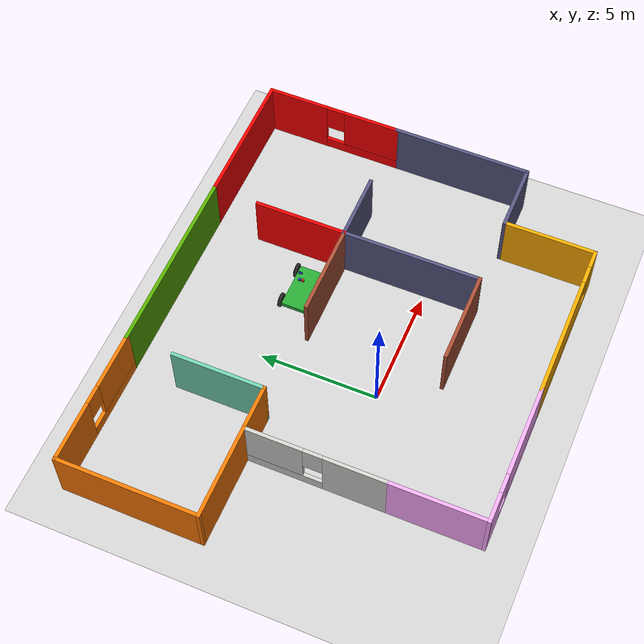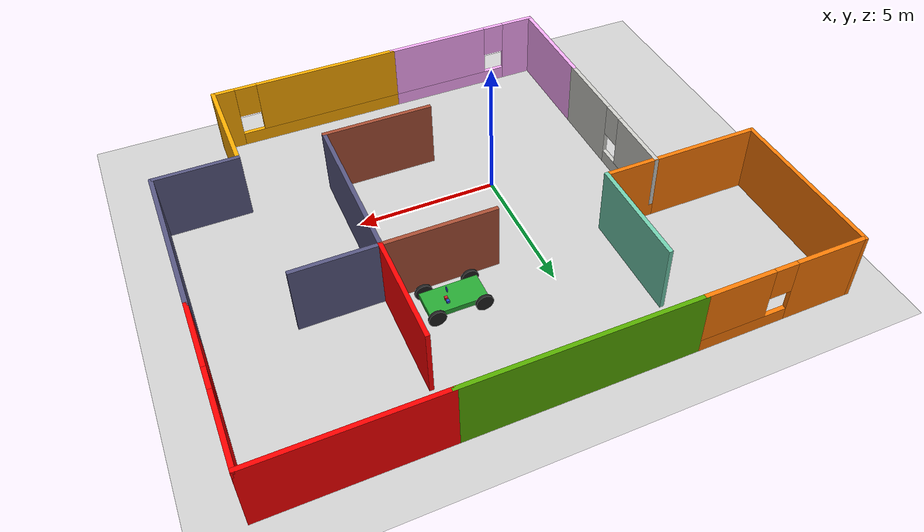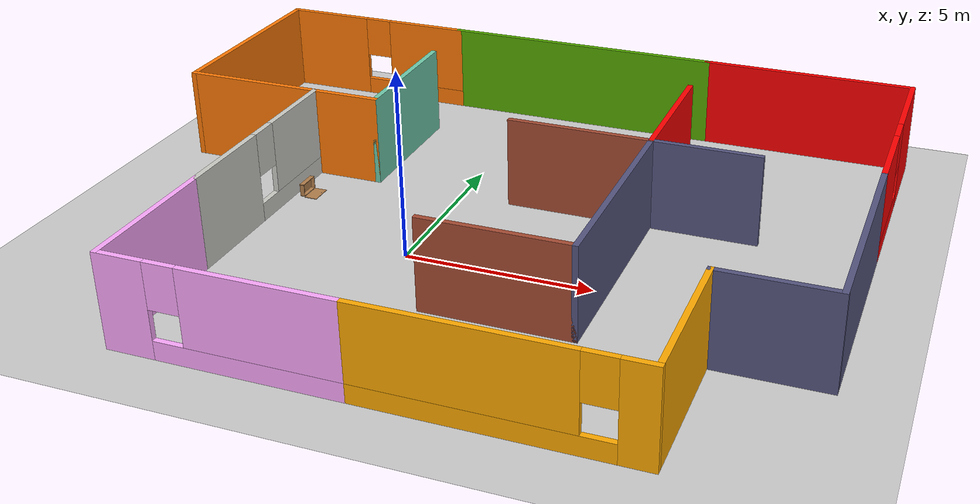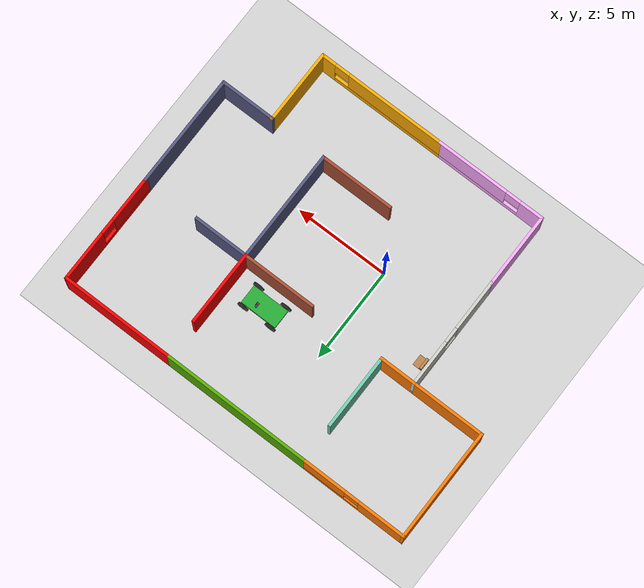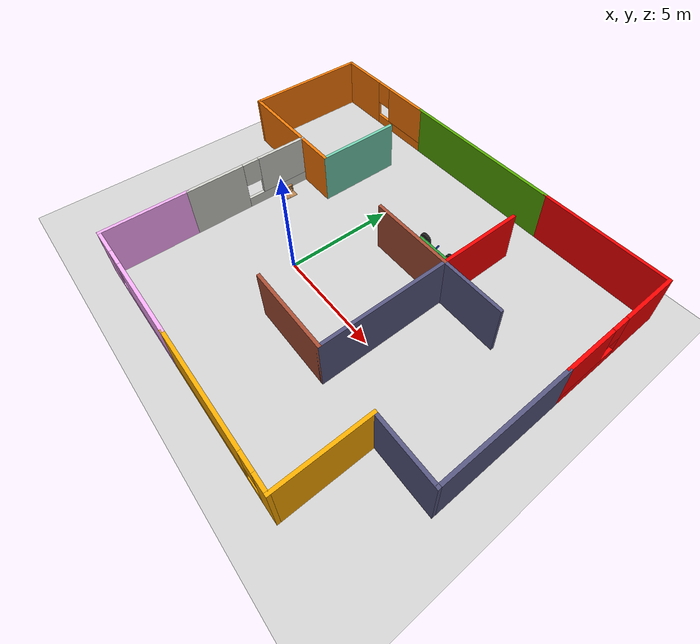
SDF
<sdf version="1.6">
 <world name="default">
  <model name="ground_plane">
   <static>1</static>
   <link name="link">
    <collision name="collision">
     <geometry><plane><normal>0 0 1</normal><size>100 100</size></plane></geometry>
     <surface>
      <contact><collide_bitmask>65535</collide_bitmask></contact>
      <friction><ode><mu>100</mu><mu2>50</mu2></ode></friction>
     </surface>
    </collision>
    <visual name="visual">
     <cast_shadows>0</cast_shadows>
     <geometry><plane><normal>0 0 1</normal><size>100 100</size></plane></geometry>
     <material>
      <script><uri>file://media/materials/scripts/gazebo.material</uri><name>Gazebo/Grey</name></script>
     </material>
    </visual>
   </link>
  </model>
  <model name="NewBuilding">
   <pose>1.46 1.695 0 0 -0 0</pose>
   <link name="Wall_0">
    <pose>-2.925 -7.775 0 0 -0 0</pose>
    <visual name="Wall_0_Visual_0">
     <pose>-2.35512 0 1.25 0 -0 0</pose>
     <geometry><box><size>1.28976 0.15 2.5</size></box></geometry>
     <material>
      <script><uri>file://media/materials/scripts/gazebo.material</uri><name>Gazebo/Grey</name></script>
      <ambient>1 0.666667 1 1</ambient>
     </material>
     <meta><layer>0</layer></meta>
    </visual>
    <collision name="Wall_0_Collision_0">
     <geometry><box><size>1.28976 0.15 2.5</size></box></geometry>
     <pose>-2.35512 0 1.25 0 -0 0</pose>
    </collision>
    <visual name="Wall_0_Visual_1">
     <pose>0.644881 0 0.25 0 -0 0</pose>
     <geometry><box><size>4.71024 0.15 0.5</size></box></geometry>
     <material>
      <script><uri>file://media/materials/scripts/gazebo.material</uri><name>Gazebo/Grey</name></script>
      <ambient>1 0.666667 1 1</ambient>
     </material>
     <meta><layer>0</layer></meta>
    </visual>
    <collision name="Wall_0_Collision_1">
     <geometry><box><size>4.71024 0.15 0.5</size></box></geometry>
     <pose>0.644881 0 0.25 0 -0 0</pose>
    </collision>
    <visual name="Wall_0_Visual_2">
     <pose>1.04488 0 1.5 0 -0 0</pose>
     <geometry><box><size>3.91024 0.15 2</size></box></geometry>
     <material>
      <script><uri>file://media/materials/scripts/gazebo.material</uri><name>Gazebo/Grey</name></script>
      <ambient>1 0.666667 1 1</ambient>
     </material>
     <meta><layer>0</layer></meta>
    </visual>
    <collision name="Wall_0_Collision_2">
     <geometry><box><size>3.91024 0.15 2</size></box></geometry>
     <pose>1.04488 0 1.5 0 -0 0</pose>
    </collision>
    <visual name="Wall_0_Visual_3">
     <pose>-1.31024 0 1.9 0 -0 0</pose>
     <geometry><box><size>0.8 0.15 1.2</size></box></geometry>
     <material>
      <script><uri>file://media/materials/scripts/gazebo.material</uri><name>Gazebo/Grey</name></script>
      <ambient>1 0.666667 1 1</ambient>
     </material>
     <meta><layer>0</layer></meta>
    </visual>
    <collision name="Wall_0_Collision_3">
     <geometry><box><size>0.8 0.15 1.2</size></box></geometry>
     <pose>-1.31024 0 1.9 0 -0 0</pose>
    </collision>
   </link>
   <link name="Wall_12">
    <collision name="Wall_12_Collision">
     <geometry><box><size>2 0.15 2.5</size></box></geometry>
     <pose>0 0 1.25 0 -0 0</pose>
    </collision>
    <visual name="Wall_12_Visual">
     <pose>0 0 1.25 0 -0 0</pose>
     <geometry><box><size>2 0.15 2.5</size></box></geometry>
     <material>
      <script><uri>file://media/materials/scripts/gazebo.material</uri><name>Gazebo/Grey</name></script>
      <ambient>0.996078 0.47451 0.0196078 1</ambient>
     </material>
     <meta><layer>0</layer></meta>
    </visual>
    <pose>-4.925 1.925 0 0 -0 0</pose>
   </link>
   <link name="Wall_13">
    <collision name="Wall_13_Collision">
     <geometry><box><size>4 0.15 2.5</size></box></geometry>
     <pose>0 0 1.25 0 -0 0</pose>
    </collision>
    <visual name="Wall_13_Visual">
     <pose>0 0 1.25 0 -0 0</pose>
     <geometry><box><size>4 0.15 2.5</size></box></geometry>
     <material>
      <script><uri>file://media/materials/scripts/gazebo.material</uri><name>Gazebo/Grey</name></script>
      <ambient>0.435294 0.796078 0.67451 1</ambient>
     </material>
     <meta><layer>0</layer></meta>
    </visual>
    <pose>-4 3.85 0 0 -0 1.5708</pose>
   </link>
   <link name="Wall_17">
    <collision name="Wall_17_Collision">
     <geometry><box><size>8 0.15 2.5</size></box></geometry>
     <pose>0 0 1.25 0 -0 0</pose>
    </collision>
    <visual name="Wall_17_Visual">
     <pose>0 0 1.25 0 -0 0</pose>
     <geometry><box><size>8 0.15 2.5</size></box></geometry>
     <material>
      <script><uri>file://media/materials/scripts/gazebo.material</uri><name>Gazebo/Grey</name></script>
      <ambient>0.333333 0.666667 0 1</ambient>
     </material>
     <meta><layer>0</layer></meta>
    </visual>
    <pose>-0.075 7.775 0 0 -0 3.14159</pose>
   </link>
   <link name="Wall_2">
    <collision name="Wall_2_Collision">
     <geometry><box><size>4 0.15 2.5</size></box></geometry>
     <pose>0 0 1.25 0 -0 0</pose>
    </collision>
    <visual name="Wall_2_Visual">
     <pose>0 0 1.25 0 -0 0</pose>
     <geometry><box><size>4 0.15 2.5</size></box></geometry>
     <material>
      <script><uri>file://media/materials/scripts/gazebo.material</uri><name>Gazebo/Bricks</name></script>
      <ambient>1 1 1 1</ambient>
     </material>
     <meta><layer>0</layer></meta>
    </visual>
    <pose>1.925 -3.925 0 0 -0 0</pose>
   </link>
   <link name="Wall_20">
    <collision name="Wall_20_Collision">
     <geometry><box><size>4 0.15 2.5</size></box></geometry>
     <pose>0 0 1.25 0 -0 0</pose>
    </collision>
    <visual name="Wall_20_Visual">
     <pose>0 0 1.25 0 -0 0</pose>
     <geometry><box><size>4 0.15 2.5</size></box></geometry>
     <material>
      <script><uri>file://media/materials/scripts/gazebo.material</uri><name>Gazebo/Grey</name></script>
      <ambient>0.996078 0.47451 0.0196078 1</ambient>
     </material>
     <meta><layer>0</layer></meta>
    </visual>
    <pose>-7.775 1.925 0 0 -0 3.14159</pose>
   </link>
   <link name="Wall_22">
    <collision name="Wall_22_Collision">
     <geometry><box><size>6 0.15 2.5</size></box></geometry>
     <pose>0 0 1.25 0 -0 0</pose>
    </collision>
    <visual name="Wall_22_Visual">
     <pose>0 0 1.25 0 -0 0</pose>
     <geometry><box><size>6 0.15 2.5</size></box></geometry>
     <material>
      <script><uri>file://media/materials/scripts/gazebo.material</uri><name>Gazebo/Grey</name></script>
      <ambient>0.996078 0.47451 0.0196078 1</ambient>
     </material>
     <meta><layer>0</layer></meta>
    </visual>
    <pose>-9.7 4.85 0 0 -0 1.5708</pose>
   </link>
   <link name="Wall_23">
    <pose>-6.85 7.775 0 0 -0 0</pose>
    <visual name="Wall_23_Visual_0">
     <pose>-1.63189 0 1.25 0 -0 0</pose>
     <geometry><box><size>2.58621 0.15 2.5</size></box></geometry>
     <material>
      <script><uri>file://media/materials/scripts/gazebo.material</uri><name>Gazebo/Grey</name></script>
      <ambient>0.996078 0.47451 0.0196078 1</ambient>
     </material>
     <meta><layer>0</layer></meta>
    </visual>
    <collision name="Wall_23_Collision_0">
     <geometry><box><size>2.58621 0.15 2.5</size></box></geometry>
     <pose>-1.63189 0 1.25 0 -0 0</pose>
    </collision>
    <visual name="Wall_23_Visual_1">
     <pose>1.29311 0 0.25 0 -0 0</pose>
     <geometry><box><size>3.26379 0.15 0.5</size></box></geometry>
     <material>
      <script><uri>file://media/materials/scripts/gazebo.material</uri><name>Gazebo/Grey</name></script>
      <ambient>0.996078 0.47451 0.0196078 1</ambient>
     </material>
     <meta><layer>0</layer></meta>
    </visual>
    <collision name="Wall_23_Collision_1">
     <geometry><box><size>3.26379 0.15 0.5</size></box></geometry>
     <pose>1.29311 0 0.25 0 -0 0</pose>
    </collision>
    <visual name="Wall_23_Visual_2">
     <pose>1.69311 0 1.5 0 -0 0</pose>
     <geometry><box><size>2.46379 0.15 2</size></box></geometry>
     <material>
      <script><uri>file://media/materials/scripts/gazebo.material</uri><name>Gazebo/Grey</name></script>
      <ambient>0.996078 0.47451 0.0196078 1</ambient>
     </material>
     <meta><layer>0</layer></meta>
    </visual>
    <collision name="Wall_23_Collision_2">
     <geometry><box><size>2.46379 0.15 2</size></box></geometry>
     <pose>1.69311 0 1.5 0 -0 0</pose>
    </collision>
    <visual name="Wall_23_Visual_3">
     <pose>0.061212 0 1.9 0 -0 0</pose>
     <geometry><box><size>0.8 0.15 1.2</size></box></geometry>
     <material>
      <script><uri>file://media/materials/scripts/gazebo.material</uri><name>Gazebo/Grey</name></script>
      <ambient>0.996078 0.47451 0.0196078 1</ambient>
     </material>
     <meta><layer>0</layer></meta>
    </visual>
    <collision name="Wall_23_Collision_3">
     <geometry><box><size>0.8 0.15 1.2</size></box></geometry>
     <pose>0.061212 0 1.9 0 -0 0</pose>
    </collision>
   </link>
   <link name="Wall_25">
    <collision name="Wall_25_Collision">
     <geometry><box><size>4 0.15 2.5</size></box></geometry>
     <pose>0 0 1.25 0 -0 0</pose>
    </collision>
    <visual name="Wall_25_Visual">
     <pose>0 0 1.25 0 -0 0</pose>
     <geometry><box><size>4 0.15 2.5</size></box></geometry>
     <material>
      <script><uri>file://media/materials/scripts/gazebo.material</uri><name>Gazebo/Grey</name></script>
      <ambient>1 0 0 1</ambient>
     </material>
     <meta><layer>0</layer></meta>
    </visual>
    <pose>3.85 3.85 0 0 -0 1.5708</pose>
   </link>
   <link name="Wall_28">
    <collision name="Wall_28_Collision">
     <geometry><box><size>6 0.15 2.5</size></box></geometry>
     <pose>0 0 1.25 0 -0 0</pose>
    </collision>
    <visual name="Wall_28_Visual">
     <pose>0 0 1.25 0 -0 0</pose>
     <geometry><box><size>6 0.15 2.5</size></box></geometry>
     <material>
      <script><uri>file://media/materials/scripts/gazebo.material</uri><name>Gazebo/Grey</name></script>
      <ambient>1 0 0 1</ambient>
     </material>
     <meta><layer>0</layer></meta>
    </visual>
    <pose>6.775 7.775 0 0 -0 0</pose>
   </link>
   <link name="Wall_3">
    <collision name="Wall_3_Collision">
     <geometry><box><size>6 0.15 2.5</size></box></geometry>
     <pose>0 0 1.25 0 -0 0</pose>
    </collision>
    <visual name="Wall_3_Visual">
     <pose>0 0 1.25 0 -0 0</pose>
     <geometry><box><size>6 0.15 2.5</size></box></geometry>
     <material>
      <script><uri>file://media/materials/scripts/gazebo.material</uri><name>Gazebo/Grey</name></script>
      <ambient>0.333333 0.333333 0.498039 1</ambient>
     </material>
     <meta><layer>0</layer></meta>
    </visual>
    <pose>3.85 -1 0 0 -0 1.5708</pose>
   </link>
   <link name="Wall_30">
    <pose>9.7 4.85 0 0 0 -1.5708</pose>
    <visual name="Wall_30_Visual_0">
     <pose>-1.64654 0 1.25 0 -0 0</pose>
     <geometry><box><size>2.70692 0.15 2.5</size></box></geometry>
     <material>
      <script><uri>file://media/materials/scripts/gazebo.material</uri><name>Gazebo/Grey</name></script>
      <ambient>1 0 0 1</ambient>
     </material>
     <meta><layer>0</layer></meta>
    </visual>
    <collision name="Wall_30_Collision_0">
     <geometry><box><size>2.70692 0.15 2.5</size></box></geometry>
     <pose>-1.64654 0 1.25 0 -0 0</pose>
    </collision>
    <visual name="Wall_30_Visual_1">
     <pose>1.35346 0 0.25 0 -0 0</pose>
     <geometry><box><size>3.29308 0.15 0.5</size></box></geometry>
     <material>
      <script><uri>file://media/materials/scripts/gazebo.material</uri><name>Gazebo/Grey</name></script>
      <ambient>1 0 0 1</ambient>
     </material>
     <meta><layer>0</layer></meta>
    </visual>
    <collision name="Wall_30_Collision_1">
     <geometry><box><size>3.29308 0.15 0.5</size></box></geometry>
     <pose>1.35346 0 0.25 0 -0 0</pose>
    </collision>
    <visual name="Wall_30_Visual_2">
     <pose>1.75346 0 1.5 0 -0 0</pose>
     <geometry><box><size>2.49308 0.15 2</size></box></geometry>
     <material>
      <script><uri>file://media/materials/scripts/gazebo.material</uri><name>Gazebo/Grey</name></script>
      <ambient>1 0 0 1</ambient>
     </material>
     <meta><layer>0</layer></meta>
    </visual>
    <collision name="Wall_30_Collision_2">
     <geometry><box><size>2.49308 0.15 2</size></box></geometry>
     <pose>1.75346 0 1.5 0 -0 0</pose>
    </collision>
    <visual name="Wall_30_Visual_3">
     <pose>0.10692 0 1.9 0 -0 0</pose>
     <geometry><box><size>0.8 0.15 1.2</size></box></geometry>
     <material>
      <script><uri>file://media/materials/scripts/gazebo.material</uri><name>Gazebo/Grey</name></script>
      <ambient>1 0 0 1</ambient>
     </material>
     <meta><layer>0</layer></meta>
    </visual>
    <collision name="Wall_30_Collision_3">
     <geometry><box><size>0.8 0.15 1.2</size></box></geometry>
     <pose>0.10692 0 1.9 0 -0 0</pose>
    </collision>
   </link>
   <link name="Wall_34">
    <collision name="Wall_34_Collision">
     <geometry><box><size>3 0.15 2.5</size></box></geometry>
     <pose>0 0 1.25 0 -0 0</pose>
    </collision>
    <visual name="Wall_34_Visual">
     <pose>0 0 1.25 0 -0 0</pose>
     <geometry><box><size>3 0.15 2.5</size></box></geometry>
     <material>
      <script><uri>file://media/materials/scripts/gazebo.material</uri><name>Gazebo/Grey</name></script>
      <ambient>0.333333 0.333333 0.498039 1</ambient>
     </material>
     <meta><layer>0</layer></meta>
    </visual>
    <pose>5.275 1.925 0 0 -0 0</pose>
   </link>
   <link name="Wall_36">
    <collision name="Wall_36_Collision">
     <geometry><box><size>6 0.15 2.5</size></box></geometry>
     <pose>0 0 1.25 0 -0 0</pose>
    </collision>
    <visual name="Wall_36_Visual">
     <pose>0 0 1.25 0 -0 0</pose>
     <geometry><box><size>6 0.15 2.5</size></box></geometry>
     <material>
      <script><uri>file://media/materials/scripts/gazebo.material</uri><name>Gazebo/Grey</name></script>
      <ambient>0.333333 0.333333 0.498039 1</ambient>
     </material>
     <meta><layer>0</layer></meta>
    </visual>
    <pose>9.7 -1 0 0 0 -1.5708</pose>
   </link>
   <link name="Wall_38">
    <collision name="Wall_38_Collision">
     <geometry><box><size>3 0.15 2.5</size></box></geometry>
     <pose>0 0 1.25 0 -0 0</pose>
    </collision>
    <visual name="Wall_38_Visual">
     <pose>0 0 1.25 0 -0 0</pose>
     <geometry><box><size>3 0.15 2.5</size></box></geometry>
     <material>
      <script><uri>file://media/materials/scripts/gazebo.material</uri><name>Gazebo/Grey</name></script>
      <ambient>0.333333 0.333333 0.498039 1</ambient>
     </material>
     <meta><layer>0</layer></meta>
    </visual>
    <pose>8.275 -3.925 0 0 -0 3.14159</pose>
   </link>
   <link name="Wall_40">
    <collision name="Wall_40_Collision">
     <geometry><box><size>4 0.15 2.5</size></box></geometry>
     <pose>0 0 1.25 0 -0 0</pose>
    </collision>
    <visual name="Wall_40_Visual">
     <pose>0 0 1.25 0 -0 0</pose>
     <geometry><box><size>4 0.15 2.5</size></box></geometry>
     <material>
      <script><uri>file://media/materials/scripts/gazebo.material</uri><name>Gazebo/Grey</name></script>
      <ambient>1 0.666667 0 1</ambient>
     </material>
     <meta><layer>0</layer></meta>
    </visual>
    <pose>6.85 -5.85 0 0 0 -1.5708</pose>
   </link>
   <link name="Wall_41">
    <pose>3.425 -7.775 0 0 -0 3.14159</pose>
    <visual name="Wall_41_Visual_0">
     <pose>-3.07831 0 1.25 0 -0 0</pose>
     <geometry><box><size>0.843374 0.15 2.5</size></box></geometry>
     <material>
      <script><uri>file://media/materials/scripts/gazebo.material</uri><name>Gazebo/Grey</name></script>
      <ambient>1 0.666667 0 1</ambient>
     </material>
     <meta><layer>0</layer></meta>
    </visual>
    <collision name="Wall_41_Collision_0">
     <geometry><box><size>0.843374 0.15 2.5</size></box></geometry>
     <pose>-3.07831 0 1.25 0 -0 0</pose>
    </collision>
    <visual name="Wall_41_Visual_1">
     <pose>0.421687 0 0.25 0 -0 0</pose>
     <geometry><box><size>6.15663 0.15 0.5</size></box></geometry>
     <material>
      <script><uri>file://media/materials/scripts/gazebo.material</uri><name>Gazebo/Grey</name></script>
      <ambient>1 0.666667 0 1</ambient>
     </material>
     <meta><layer>0</layer></meta>
    </visual>
    <collision name="Wall_41_Collision_1">
     <geometry><box><size>6.15663 0.15 0.5</size></box></geometry>
     <pose>0.421687 0 0.25 0 -0 0</pose>
    </collision>
    <visual name="Wall_41_Visual_2">
     <pose>0.821687 0 1.5 0 -0 0</pose>
     <geometry><box><size>5.35663 0.15 2</size></box></geometry>
     <material>
      <script><uri>file://media/materials/scripts/gazebo.material</uri><name>Gazebo/Grey</name></script>
      <ambient>1 0.666667 0 1</ambient>
     </material>
     <meta><layer>0</layer></meta>
    </visual>
    <collision name="Wall_41_Collision_2">
     <geometry><box><size>5.35663 0.15 2</size></box></geometry>
     <pose>0.821687 0 1.5 0 -0 0</pose>
    </collision>
    <visual name="Wall_41_Visual_3">
     <pose>-2.25663 0 1.9 0 -0 0</pose>
     <geometry><box><size>0.8 0.15 1.2</size></box></geometry>
     <material>
      <script><uri>file://media/materials/scripts/gazebo.material</uri><name>Gazebo/Grey</name></script>
      <ambient>1 0.666667 0 1</ambient>
     </material>
     <meta><layer>0</layer></meta>
    </visual>
    <collision name="Wall_41_Collision_3">
     <geometry><box><size>0.8 0.15 1.2</size></box></geometry>
     <pose>-2.25663 0 1.9 0 -0 0</pose>
    </collision>
   </link>
   <link name="Wall_6">
    <collision name="Wall_6_Collision">
     <geometry><box><size>4 0.15 2.5</size></box></geometry>
     <pose>0 0 1.25 0 -0 0</pose>
    </collision>
    <visual name="Wall_6_Visual">
     <pose>0 0 1.25 0 -0 0</pose>
     <geometry><box><size>4 0.15 2.5</size></box></geometry>
     <material>
      <script><uri>file://media/materials/scripts/gazebo.material</uri><name>Gazebo/Bricks</name></script>
      <ambient>1 1 1 1</ambient>
     </material>
     <meta><layer>0</layer></meta>
    </visual>
    <pose>1.925 1.925 0 0 -0 3.14159</pose>
   </link>
   <link name="Wall_8">
    <collision name="Wall_8_Collision">
     <geometry><box><size>4 0.15 2.5</size></box></geometry>
     <pose>0 0 1.25 0 -0 0</pose>
    </collision>
    <visual name="Wall_8_Visual">
     <pose>0 0 1.25 0 -0 0</pose>
     <geometry><box><size>4 0.15 2.5</size></box></geometry>
     <material>
      <script><uri>file://media/materials/scripts/gazebo.material</uri><name>Gazebo/Grey</name></script>
      <ambient>1 0.666667 1 1</ambient>
     </material>
     <meta><layer>0</layer></meta>
    </visual>
    <pose>-5.85 -5.85 0 0 -0 1.5708</pose>
   </link>
   <link name="Wall_9">
    <pose>-5.85 -1 0 0 -0 1.5708</pose>
    <visual name="Wall_9_Visual_0">
     <pose>-1.63562 0 1.25 0 -0 0</pose>
     <geometry><box><size>2.72877 0.15 2.5</size></box></geometry>
     <material>
      <script><uri>file://media/materials/scripts/gazebo.material</uri><name>Gazebo/CeilingTiled</name></script>
      <ambient>1 1 1 1</ambient>
     </material>
     <meta><layer>0</layer></meta>
    </visual>
    <collision name="Wall_9_Collision_0">
     <geometry><box><size>2.72877 0.15 2.5</size></box></geometry>
     <pose>-1.63562 0 1.25 0 -0 0</pose>
    </collision>
    <visual name="Wall_9_Visual_1">
     <pose>1.36438 0 0.25 0 -0 0</pose>
     <geometry><box><size>3.27123 0.15 0.5</size></box></geometry>
     <material>
      <script><uri>file://media/materials/scripts/gazebo.material</uri><name>Gazebo/CeilingTiled</name></script>
      <ambient>1 1 1 1</ambient>
     </material>
     <meta><layer>0</layer></meta>
    </visual>
    <collision name="Wall_9_Collision_1">
     <geometry><box><size>3.27123 0.15 0.5</size></box></geometry>
     <pose>1.36438 0 0.25 0 -0 0</pose>
    </collision>
    <visual name="Wall_9_Visual_2">
     <pose>1.76439 0 1.5 0 -0 0</pose>
     <geometry><box><size>2.47123 0.15 2</size></box></geometry>
     <material>
      <script><uri>file://media/materials/scripts/gazebo.material</uri><name>Gazebo/CeilingTiled</name></script>
      <ambient>1 1 1 1</ambient>
     </material>
     <meta><layer>0</layer></meta>
    </visual>
    <collision name="Wall_9_Collision_2">
     <geometry><box><size>2.47123 0.15 2</size></box></geometry>
     <pose>1.76439 0 1.5 0 -0 0</pose>
    </collision>
    <visual name="Wall_9_Visual_3">
     <pose>0.12877 0 1.9 0 -0 0</pose>
     <geometry><box><size>0.8 0.15 1.2</size></box></geometry>
     <material>
      <script><uri>file://media/materials/scripts/gazebo.material</uri><name>Gazebo/CeilingTiled</name></script>
      <ambient>1 1 1 1</ambient>
     </material>
     <meta><layer>0</layer></meta>
    </visual>
    <collision name="Wall_9_Collision_3">
     <geometry><box><size>0.8 0.15 1.2</size></box></geometry>
     <pose>0.12877 0 1.9 0 -0 0</pose>
    </collision>
   </link>
   <static>1</static>
  </model>
  <model name="wooden_case_metal_peg">
   <link name="wooden_case::base">
    <pose>0 0 0.024 0 -0 0</pose>
    <inertial>
     <pose>-0.022184 0 0.171592 0 -0 0</pose>
     <mass>3.96264</mass>
     <inertia>
      <ixx>0.213536</ixx>
      <ixy>0</ixy>
      <ixz>0.000779377</ixz>
      <iyy>0.0708943</iyy>
      <iyz>0</iyz>
      <izz>0.154604</izz>
     </inertia>
    </inertial>
    <collision name="collision_back">
     <pose>-0.053975 0 0.1778 0 -0 0</pose>
     <geometry><box><size>0.01905 0.5461 0.3175</size></box></geometry>
     <surface>
      <contact>
       <poissons_ratio>0.347</poissons_ratio>
       <elastic_modulus>8.8e+09</elastic_modulus>
       <ode><kp>100000</kp><kd>100</kd><max_vel>100</max_vel><min_depth>0.001</min_depth></ode>
      </contact>
      <friction>
       <torsional>
        <coefficient>1</coefficient>
        <use_patch_radius>0</use_patch_radius>
        <surface_radius>0.01</surface_radius>
       </torsional>
      </friction>
     </surface>
    </collision>
    <visual name="visual_back">
     <pose>-0.053975 0 0.1778 0 -0 0</pose>
     <geometry><box><size>0.01905 0.5461 0.3175</size></box></geometry>
     <material>
      <script><uri>file://media/materials/scripts/gazebo.material</uri><name>Gazebo/Wood</name></script>
     </material>
    </visual>
    <collision name="collision_bottom">
     <pose>0 0 0.009525 0 -0 0</pose>
     <geometry><box><size>0.127 0.5842 0.01905</size></box></geometry>
     <surface>
      <contact>
       <poissons_ratio>0.347</poissons_ratio>
       <elastic_modulus>8.8e+09</elastic_modulus>
       <ode><kp>100000</kp><kd>100</kd><max_vel>100</max_vel><min_depth>0.001</min_depth></ode>
      </contact>
      <friction>
       <torsional>
        <coefficient>1</coefficient>
        <use_patch_radius>0</use_patch_radius>
        <surface_radius>0.01</surface_radius>
       </torsional>
      </friction>
     </surface>
    </collision>
    <visual name="visual_bottom">
     <pose>0 0 0.009525 0 -0 0</pose>
     <geometry><box><size>0.127 0.5842 0.01905</size></box></geometry>
     <material>
      <script><uri>file://media/materials/scripts/gazebo.material</uri><name>Gazebo/Wood</name></script>
     </material>
    </visual>
    <collision name="collision_top">
     <pose>0 0 0.346075 0 -0 0</pose>
     <geometry><box><size>0.127 0.5842 0.01905</size></box></geometry>
     <surface>
      <contact>
       <poissons_ratio>0.347</poissons_ratio>
       <elastic_modulus>8.8e+09</elastic_modulus>
       <ode><kp>100000</kp><kd>100</kd><max_vel>100</max_vel><min_depth>0.001</min_depth></ode>
      </contact>
      <friction>
       <torsional>
        <coefficient>1</coefficient>
        <use_patch_radius>0</use_patch_radius>
        <surface_radius>0.01</surface_radius>
       </torsional>
      </friction>
     </surface>
    </collision>
    <visual name="visual_top">
     <pose>0 0 0.346075 0 -0 0</pose>
     <geometry><box><size>0.127 0.5842 0.01905</size></box></geometry>
     <material>
      <script><uri>file://media/materials/scripts/gazebo.material</uri><name>Gazebo/Wood</name></script>
     </material>
    </visual>
    <collision name="collision_left">
     <pose>0 -0.282575 0.1778 0 -0 0</pose>
     <geometry><box><size>0.127 0.01905 0.3175</size></box></geometry>
     <surface>
      <contact>
       <poissons_ratio>0.347</poissons_ratio>
       <elastic_modulus>8.8e+09</elastic_modulus>
       <ode><kp>100000</kp><kd>100</kd><max_vel>100</max_vel><min_depth>0.001</min_depth></ode>
      </contact>
      <friction>
       <torsional>
        <coefficient>1</coefficient>
        <use_patch_radius>0</use_patch_radius>
        <surface_radius>0.01</surface_radius>
       </torsional>
      </friction>
     </surface>
    </collision>
    <visual name="visual_left">
     <pose>0 -0.282575 0.1778 0 -0 0</pose>
     <geometry><box><size>0.127 0.01905 0.3175</size></box></geometry>
     <material>
      <script><uri>file://media/materials/scripts/gazebo.material</uri><name>Gazebo/Wood</name></script>
     </material>
    </visual>
    <collision name="collision_right">
     <pose>0 0.282575 0.1778 0 -0 0</pose>
     <geometry><box><size>0.127 0.01905 0.3175</size></box></geometry>
     <surface>
      <contact>
       <poissons_ratio>0.347</poissons_ratio>
       <elastic_modulus>8.8e+09</elastic_modulus>
       <ode><kp>100000</kp><kd>100</kd><max_vel>100</max_vel><min_depth>0.001</min_depth></ode>
      </contact>
      <friction>
       <torsional>
        <coefficient>1</coefficient>
        <use_patch_radius>0</use_patch_radius>
        <surface_radius>0.01</surface_radius>
       </torsional>
      </friction>
     </surface>
    </collision>
    <visual name="visual_right">
     <pose>0 0.282575 0.1778 0 -0 0</pose>
     <geometry><box><size>0.127 0.01905 0.3175</size></box></geometry>
     <material>
      <script><uri>file://media/materials/scripts/gazebo.material</uri><name>Gazebo/Wood</name></script>
     </material>
    </visual>
    <collision name="collision_block_left">
     <pose>0.0095 -0.2151 -0.012 0 -0 0</pose>
     <geometry><box><size>0.108 0.05 0.024</size></box></geometry>
     <surface>
      <contact>
       <poissons_ratio>0.347</poissons_ratio>
       <elastic_modulus>8.8e+09</elastic_modulus>
       <ode><kp>100000</kp><kd>100</kd><max_vel>100</max_vel><min_depth>0.001</min_depth></ode>
      </contact>
      <friction>
       <torsional>
        <coefficient>1</coefficient>
        <use_patch_radius>0</use_patch_radius>
        <surface_radius>0.01</surface_radius>
       </torsional>
      </friction>
     </surface>
    </collision>
    <visual name="visual_block_left">
     <pose>0.0095 -0.2151 -0.012 0 -0 0</pose>
     <geometry><box><size>0.108 0.05 0.024</size></box></geometry>
     <material>
      <script><uri>file://media/materials/scripts/gazebo.material</uri><name>Gazebo/Wood</name></script>
     </material>
    </visual>
    <collision name="collision_block_right">
     <pose>0.0095 0.2151 -0.012 0 -0 0</pose>
     <geometry><box><size>0.108 0.05 0.024</size></box></geometry>
     <surface>
      <contact>
       <poissons_ratio>0.347</poissons_ratio>
       <elastic_modulus>8.8e+09</elastic_modulus>
       <ode><kp>100000</kp><kd>100</kd><max_vel>100</max_vel><min_depth>0.001</min_depth></ode>
      </contact>
      <friction>
       <torsional>
        <coefficient>1</coefficient>
        <use_patch_radius>0</use_patch_radius>
        <surface_radius>0.01</surface_radius>
       </torsional>
      </friction>
     </surface>
    </collision>
    <visual name="visual_block_right">
     <pose>0.0095 0.2151 -0.012 0 -0 0</pose>
     <geometry><box><size>0.108 0.05 0.024</size></box></geometry>
     <material>
      <script><uri>file://media/materials/scripts/gazebo.material</uri><name>Gazebo/Wood</name></script>
     </material>
    </visual>
   </link>
   <link name="wooden_case::lid">
    <pose>0.243775 0 0.009525 0 -0 0</pose>
    <inertial>
     <mass>1.97874</mass>
     <inertia>
      <ixx>0.0563367</ixx>
      <ixy>0</ixy>
      <ixz>0</ixz>
      <iyy>0.020911</iyy>
      <iyz>0</iyz>
      <izz>0.0771281</izz>
     </inertia>
    </inertial>
    <collision name="collision">
     <geometry><box><size>0.3556 0.5842 0.01905</size></box></geometry>
     <surface>
      <contact>
       <poissons_ratio>0.347</poissons_ratio>
       <elastic_modulus>8.8e+09</elastic_modulus>
       <ode><kp>100000</kp><kd>100</kd><max_vel>100</max_vel><min_depth>0.001</min_depth></ode>
      </contact>
      <friction>
       <torsional>
        <coefficient>1</coefficient>
        <use_patch_radius>0</use_patch_radius>
        <surface_radius>0.01</surface_radius>
       </torsional>
      </friction>
     </surface>
    </collision>
    <visual name="visual">
     <geometry><box><size>0.3556 0.5842 0.01905</size></box></geometry>
     <material>
      <script><uri>file://media/materials/scripts/gazebo.material</uri><name>Gazebo/Wood</name></script>
     </material>
    </visual>
    <visual name="tee_nut_1">
     <pose>0.122 -0.216 0 0 -0 0</pose>
     <geometry><cylinder><radius>0.00635</radius><length>0.0192405</length></cylinder></geometry>
     <material>
      <script><uri>file://media/materials/scripts/gazebo.material</uri><name>Gazebo/Grey</name></script>
     </material>
    </visual>
    <visual name="tee_nut_2">
     <pose>0.122 -0.088 0 0 -0 0</pose>
     <geometry><cylinder><radius>0.00635</radius><length>0.0192405</length></cylinder></geometry>
     <material>
      <script><uri>file://media/materials/scripts/gazebo.material</uri><name>Gazebo/Grey</name></script>
     </material>
    </visual>
    <visual name="tee_nut_3">
     <pose>0.122 0.088 0 0 -0 0</pose>
     <geometry><cylinder><radius>0.00635</radius><length>0.0192405</length></cylinder></geometry>
     <material>
      <script><uri>file://media/materials/scripts/gazebo.material</uri><name>Gazebo/Grey</name></script>
     </material>
    </visual>
    <visual name="tee_nut_4">
     <pose>0.122 0.216 0 0 -0 0</pose>
     <geometry><cylinder><radius>0.00635</radius><length>0.0192405</length></cylinder></geometry>
     <material>
      <script><uri>file://media/materials/scripts/gazebo.material</uri><name>Gazebo/Grey</name></script>
     </material>
    </visual>
   </link>
   <joint name="wooden_case::lid_hinge" type="revolute">
    <pose>-0.1778 0 0.01905 0 -0 0</pose>
    <parent>wooden_case::base</parent>
    <child>wooden_case::lid</child>
    <axis>
     <xyz>0 1 0</xyz>
     <limit><upper>0.523599</upper><lower>-1.5708</lower></limit>
     <use_parent_model_frame>0</use_parent_model_frame>
     <dynamics><spring_reference>0</spring_reference><spring_stiffness>0</spring_stiffness></dynamics>
    </axis>
   </joint>
   <link name="peg::link">
    <pose>0.365774 0.216 0.05005 0 -0 0</pose>
    <inertial>
     <mass>0.0121</mass>
     <inertia>
      <ixx>3.90898e-06</ixx>
      <ixy>0</ixy>
      <ixz>0</ixz>
      <iyy>3.90898e-06</iyy>
      <iyz>0</iyz>
      <izz>6.58845e-08</izz>
     </inertia>
    </inertial>
    <collision name="collision">
     <geometry><cylinder><radius>0.0033</radius><length>0.062</length></cylinder></geometry>
     <surface>
      <contact>
       <poissons_ratio>0.305</poissons_ratio>
       <elastic_modulus>2e+11</elastic_modulus>
       <ode><kp>100000</kp><kd>100</kd><max_vel>100</max_vel><min_depth>0.001</min_depth></ode>
      </contact>
      <friction>
       <torsional>
        <coefficient>1</coefficient>
        <use_patch_radius>0</use_patch_radius>
        <surface_radius>0.01</surface_radius>
       </torsional>
      </friction>
     </surface>
    </collision>
    <visual name="visual">
     <geometry><cylinder><radius>0.0033</radius><length>0.062</length></cylinder></geometry>
     <material>
      <script><uri>file://media/materials/scripts/gazebo.material</uri><name>Gazebo/Grey</name></script>
     </material>
    </visual>
   </link>
   <joint name="case_peg" type="revolute">
    <child>peg::link</child>
    <parent>wooden_case::lid</parent>
    <axis>
     <xyz>0 0 1</xyz>
     <limit><upper>0</upper><lower>0</lower></limit>
     <use_parent_model_frame>0</use_parent_model_frame>
     <dynamics><spring_reference>0</spring_reference><spring_stiffness>0</spring_stiffness></dynamics>
    </axis>
   </joint>
   <pose>-4.06869 2.29229 -0.001057 0 -0.000429 0</pose>
  </model>
  <model name="car">
   <link name="chassis">
    <pose>0 0 0.3 0 -0 0</pose>
    <collision name="collision"><geometry><box><size>2 1 0.2</size></box></geometry></collision>
    <visual name="visual">
     <geometry><box><size>2 1 0.2</size></box></geometry>
     <material>
      <script><uri>file://media/materials/scripts/gazebo.material</uri><name>Gazebo/Green</name></script>
     </material>
    </visual>
    <inertial>
     <inertia><ixx>1</ixx><ixy>0</ixy><ixz>0</ixz><iyy>1</iyy><iyz>0</iyz><izz>1</izz></inertia>
     <mass>1</mass>
    </inertial>
   </link>
   <link name="front_left_wheel">
    <pose>0.8 0.6 0.3 -0 1.5707 1.5707</pose>
    <collision name="collision">
     <geometry><cylinder><radius>0.3</radius><length>0.1</length></cylinder></geometry>
    </collision>
    <visual name="visual">
     <geometry><cylinder><radius>0.3</radius><length>0.1</length></cylinder></geometry>
     <material>
      <script><uri>file://media/materials/scripts/gazebo.material</uri><name>Gazebo/Black</name></script>
     </material>
    </visual>
    <inertial>
     <inertia><ixx>1</ixx><ixy>0</ixy><ixz>0</ixz><iyy>1</iyy><iyz>0</iyz><izz>1</izz></inertia>
     <mass>1</mass>
    </inertial>
   </link>
   <link name="front_right_wheel">
    <pose>0.8 -0.6 0.3 -0 1.5707 1.5707</pose>
    <collision name="collision">
     <geometry><cylinder><radius>0.3</radius><length>0.1</length></cylinder></geometry>
    </collision>
    <visual name="visual">
     <geometry><cylinder><radius>0.3</radius><length>0.1</length></cylinder></geometry>
     <material>
      <script><uri>file://media/materials/scripts/gazebo.material</uri><name>Gazebo/Black</name></script>
     </material>
    </visual>
    <inertial>
     <inertia><ixx>1</ixx><ixy>0</ixy><ixz>0</ixz><iyy>1</iyy><iyz>0</iyz><izz>1</izz></inertia>
     <mass>1</mass>
    </inertial>
   </link>
   <link name="back_right_wheel">
    <pose>-0.8 -0.6 0.3 -0 1.5707 1.5707</pose>
    <collision name="collision">
     <geometry><cylinder><radius>0.3</radius><length>0.1</length></cylinder></geometry>
    </collision>
    <visual name="visual">
     <geometry><cylinder><radius>0.3</radius><length>0.1</length></cylinder></geometry>
     <material>
      <script><uri>file://media/materials/scripts/gazebo.material</uri><name>Gazebo/Black</name></script>
     </material>
    </visual>
    <inertial>
     <inertia><ixx>1</ixx><ixy>0</ixy><ixz>0</ixz><iyy>1</iyy><iyz>0</iyz><izz>1</izz></inertia>
     <mass>1</mass>
    </inertial>
   </link>
   <link name="back_left_wheel">
    <pose>-0.8 0.6 0.3 -0 1.5707 1.5707</pose>
    <collision name="collision">
     <geometry><cylinder><radius>0.3</radius><length>0.1</length></cylinder></geometry>
    </collision>
    <visual name="visual">
     <geometry><cylinder><radius>0.3</radius><length>0.1</length></cylinder></geometry>
     <material>
      <script><uri>file://media/materials/scripts/gazebo.material</uri><name>Gazebo/Black</name></script>
     </material>
    </visual>
    <inertial>
     <inertia><ixx>1</ixx><ixy>0</ixy><ixz>0</ixz><iyy>1</iyy><iyz>0</iyz><izz>1</izz></inertia>
     <mass>1</mass>
    </inertial>
   </link>
   <link name="gas_pedal">
    <pose>0.3 0.1 0.5 0 -0 0</pose>
    <collision name="collision"><geometry><box><size>0.1 0.1 0.1</size></box></geometry></collision>
    <visual name="visual">
     <geometry><box><size>0.1 0.1 0.1</size></box></geometry>
     <material>
      <script><uri>file://media/materials/scripts/gazebo.material</uri><name>Gazebo/Red</name></script>
     </material>
    </visual>
    <inertial>
     <inertia><ixx>1</ixx><ixy>0</ixy><ixz>0</ixz><iyy>1</iyy><iyz>0</iyz><izz>1</izz></inertia>
     <mass>1</mass>
    </inertial>
   </link>
   <link name="brake_pedal">
    <pose>0.3 0.25 0.5 0 -0 0</pose>
    <collision name="collision"><geometry><box><size>0.1 0.1 0.1</size></box></geometry></collision>
    <visual name="visual">
     <geometry><box><size>0.1 0.1 0.1</size></box></geometry>
     <material>
      <script><uri>file://media/materials/scripts/gazebo.material</uri><name>Gazebo/Blue</name></script>
     </material>
    </visual>
    <inertial>
     <inertia><ixx>1</ixx><ixy>0</ixy><ixz>0</ixz><iyy>1</iyy><iyz>0</iyz><izz>1</izz></inertia>
     <mass>1</mass>
    </inertial>
   </link>
   <link name="steering_wheel">
    <pose>0.3 0.2 1 0 1.5707 0</pose>
    <collision name="collision">
     <geometry><cylinder><radius>0.1</radius><length>0.01</length></cylinder></geometry>
    </collision>
    <visual name="visual">
     <geometry><cylinder><radius>0.1</radius><length>0.01</length></cylinder></geometry>
     <material>
      <script><uri>file://media/materials/scripts/gazebo.material</uri><name>Gazebo/Blue</name></script>
     </material>
    </visual>
    <inertial>
     <inertia><ixx>1</ixx><ixy>0</ixy><ixz>0</ixz><iyy>1</iyy><iyz>0</iyz><izz>1</izz></inertia>
     <mass>1</mass>
    </inertial>
   </link>
   <joint name="gas_joint" type="prismatic">
    <parent>chassis</parent>
    <child>gas_pedal</child>
    <axis>
     <xyz>1 0 0</xyz>
     <limit><lower>0</lower><upper>0.2</upper></limit>
     <use_parent_model_frame>1</use_parent_model_frame>
     <dynamics><spring_reference>0</spring_reference><spring_stiffness>0</spring_stiffness></dynamics>
    </axis>
   </joint>
   <joint name="brake_joint" type="prismatic">
    <parent>chassis</parent>
    <child>brake_pedal</child>
    <axis>
     <xyz>1 0 0</xyz>
     <limit><lower>0</lower><upper>0.2</upper></limit>
     <use_parent_model_frame>1</use_parent_model_frame>
     <dynamics><spring_reference>0</spring_reference><spring_stiffness>0</spring_stiffness></dynamics>
    </axis>
   </joint>
   <joint name="steering_joint" type="revolute">
    <parent>chassis</parent>
    <child>steering_wheel</child>
    <axis>
     <xyz>1 0 0</xyz>
     <limit><lower>-7.853</lower><upper>7.853</upper></limit>
     <use_parent_model_frame>1</use_parent_model_frame>
     <dynamics><spring_reference>0</spring_reference><spring_stiffness>0</spring_stiffness></dynamics>
    </axis>
   </joint>
   <joint name="front_left_joint" type="revolute2">
    <parent>chassis</parent>
    <child>front_left_wheel</child>
    <axis>
     <xyz>0 0 1</xyz>
     <limit><lower>8.69127e-06</lower><upper>8.69127e-06</upper></limit>
     <use_parent_model_frame>1</use_parent_model_frame>
     <dynamics><spring_reference>0</spring_reference><spring_stiffness>0</spring_stiffness></dynamics>
    </axis>
    <axis2>
     <xyz>0 1 0</xyz>
     <use_parent_model_frame>1</use_parent_model_frame>
     <dynamics><spring_reference>0</spring_reference><spring_stiffness>0</spring_stiffness></dynamics>
    </axis2>
    <physics><ode><limit><cfm>0</cfm><erp>0.9</erp></limit></ode></physics>
   </joint>
   <joint name="front_right_joint" type="revolute2">
    <parent>chassis</parent>
    <child>front_right_wheel</child>
    <axis>
     <xyz>0 0 1</xyz>
     <limit><lower>8.69127e-06</lower><upper>8.69127e-06</upper></limit>
     <use_parent_model_frame>1</use_parent_model_frame>
     <dynamics><spring_reference>0</spring_reference><spring_stiffness>0</spring_stiffness></dynamics>
    </axis>
    <axis2>
     <xyz>0 1 0</xyz>
     <use_parent_model_frame>1</use_parent_model_frame>
     <dynamics><spring_reference>0</spring_reference><spring_stiffness>0</spring_stiffness></dynamics>
    </axis2>
    <physics><ode><limit><cfm>0</cfm><erp>0.9</erp></limit></ode></physics>
   </joint>
   <joint name="back_right_joint" type="revolute2">
    <parent>chassis</parent>
    <child>back_right_wheel</child>
    <axis>
     <xyz>0 0 1</xyz>
     <limit><lower>0</lower><upper>0</upper></limit>
     <use_parent_model_frame>1</use_parent_model_frame>
     <dynamics><spring_reference>0</spring_reference><spring_stiffness>0</spring_stiffness></dynamics>
    </axis>
    <axis2>
     <xyz>0 1 0</xyz>
     <use_parent_model_frame>1</use_parent_model_frame>
     <dynamics><spring_reference>0</spring_reference><spring_stiffness>0</spring_stiffness></dynamics>
    </axis2>
    <physics><ode><limit><cfm>0</cfm><erp>0.9</erp></limit></ode></physics>
   </joint>
   <joint name="back_left_joint" type="revolute2">
    <parent>chassis</parent>
    <child>back_left_wheel</child>
    <axis>
     <xyz>0 0 1</xyz>
     <limit><lower>0</lower><upper>0</upper></limit>
     <use_parent_model_frame>1</use_parent_model_frame>
     <dynamics><spring_reference>0</spring_reference><spring_stiffness>0</spring_stiffness></dynamics>
    </axis>
    <axis2>
     <xyz>0 1 0</xyz>
     <use_parent_model_frame>1</use_parent_model_frame>
     <dynamics><spring_reference>0</spring_reference><spring_stiffness>0</spring_stiffness></dynamics>
    </axis2>
    <physics><ode><limit><cfm>0</cfm><erp>0.9</erp></limit></ode></physics>
   </joint>
   <plugin name="vehicle" filename="libVehiclePlugin.so">
    <front_left>front_left_joint</front_left>
    <front_right>front_right_joint</front_right>
    <back_left>back_left_joint</back_left>
    <back_right>back_right_joint</back_right>
    <gas>gas_joint</gas>
    <brake>brake_joint</brake>
    <steering>steering_joint</steering>
    <front_power>10</front_power>
    <rear_power>10</rear_power>
    <tire_angle_range>0.5</tire_angle_range>
    <max_speed>10</max_speed>
    <aero_load>0.1</aero_load>
   </plugin>
   <pose>3.41889 4.68914 -0.002616 -0.000273 0.000907 0.000188</pose>
  </model>
 </world>
</sdf>
